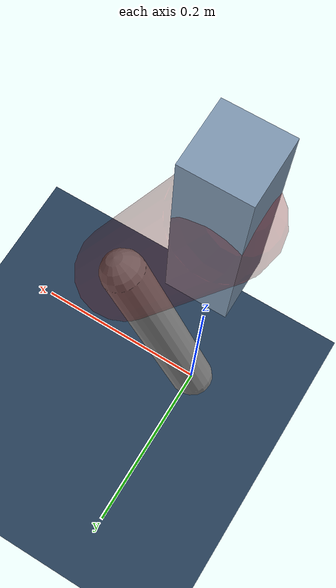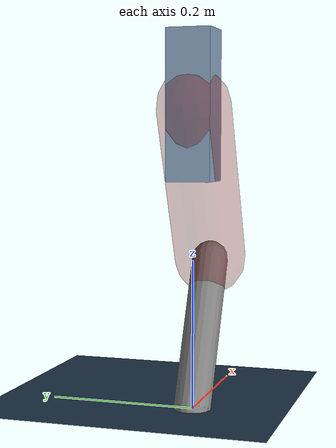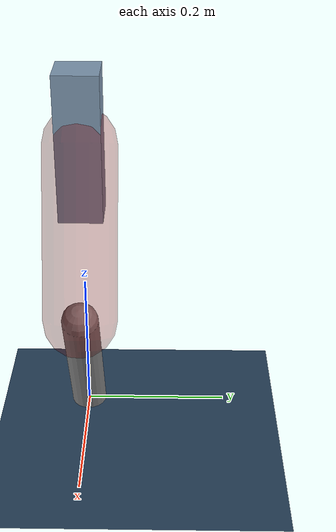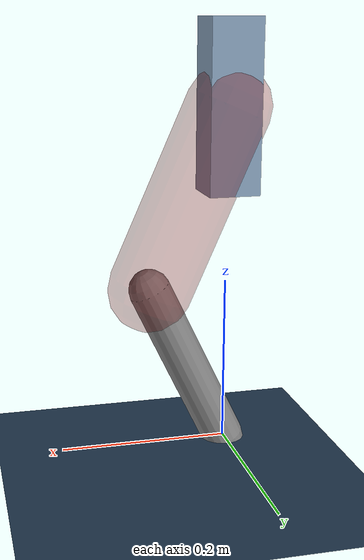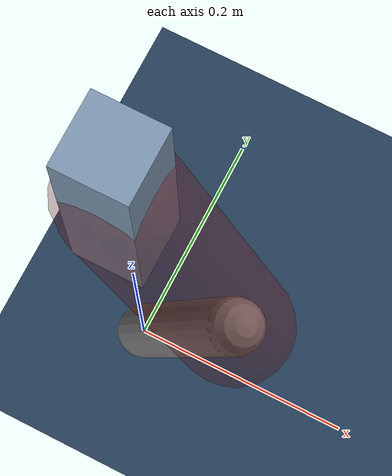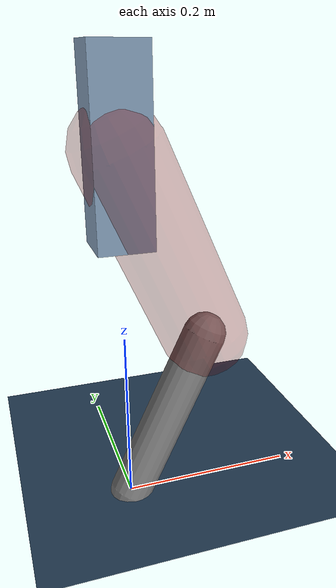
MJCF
<mujoco model="Hopper2D">
	<compiler inertiafromgeom="true" angle="radian" />
	<option timestep="0.001" integrator="implicit" cone="elliptic" solver="Newton" tolerance="1e-10" />

	<default>
		<geom contype="1" conaffinity="1" condim="3" friction="2 0.005 0.0001" solref="0.005 1" />
		<joint limited="true" damping="0.1" />
	</default>

	<asset>
		<texture name="skybox" type="skybox" builtin="gradient" rgb1=".4 .6 .8" rgb2="0 0 0" width="800" height="800" />
		<texture name="grid" type="2d" builtin="checker" rgb1=".1 .2 .3" rgb2=".2 .3 .4" width="300" height="300" mark="edge" markrgb=".2 .3 .4" />
		<material name="ground" texture="grid" texrepeat="1 1" texuniform="true" reflectance="0.1" />
		<material name="leg" rgba="0.5 0.6 0.7 1" />
	</asset>

	<worldbody>

		<geom name="floor" type="plane" size="5 5 0.25" material="ground" />

		<light directional="false" diffuse="0.8 0.8 0.8" specular="0.3 0.3 0.3" pos="0 0 2" dir="0 0 -1" />
		<light mode="targetbodycom" target="base" directional="false" diffuse="0.8 0.8 0.8" specular="0.3 0.3 0.3" pos="0 0 2" dir="0 0 -1" />

		<camera name="fixed" pos="0 -2 1" xyaxes="1 0 0 0 0 1" />
		<camera name="tracking" mode="trackcom" pos="0 -3 1" />

		<body name="root" pos="0 0 0.4067624704231088">
			<joint name="slide_x" type="slide" axis="1 0 0" range="-100 100" />
			<joint name="slide_z" type="slide" axis="0 0 1" range="0 10" />

			<body name="base" pos="0 0 0">
				<geom name="torso" type="box" size="0.03 0.03 0.1" mass="2.3850000000000002" material="leg" />

				<body name="link1" pos="0 0 0" euler="0 1.1565929667569441 0">
					<joint type="hinge" axis="0 -1 0" pos="0 0 0" name="hinge1" limited="true" range="-3.14 3.14" stiffness="0" damping="0.1" />
					<geom name="thigh" type="capsule" fromto="0 0 0 0.23240148308251793 0 0" size="0.05" rgba="0.5 0 0 0.3" mass="0.8111438560145466" />

					<body name="link2" pos="0.23240148308251793 0 0" euler="0 0.8634227356352375 0">
						<joint type="hinge" axis="0 -1 0" pos="0 0 0" name="hinge2" limited="true" range="-3.14 3.14" stiffness="0" damping="0.1" />
						<geom name="shank" type="capsule" fromto="0 0 0 0.21538236702707203 0 0" size="0.025" mass="0.4138058936216576" />

					</body>
				</body>
			</body>
		</body>
	</worldbody>

	<actuator>
		<motor name="torque1" joint="hinge1" ctrlrange="-73.32238073953842 73.32238073953842" ctrllimited="true" gear="1" />
		<motor name="torque2" joint="hinge2" ctrlrange="-40.968403366913286 40.968403366913286" ctrllimited="true" gear="1" />
	</actuator>
</mujoco>
